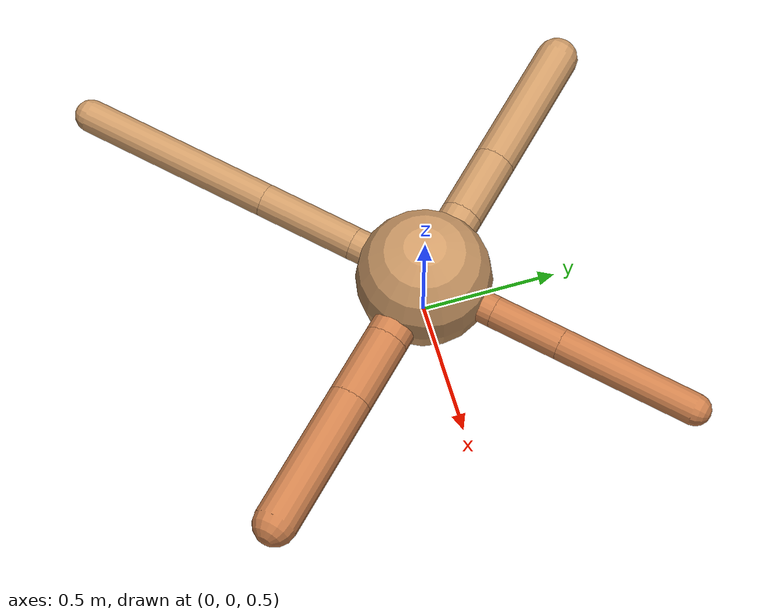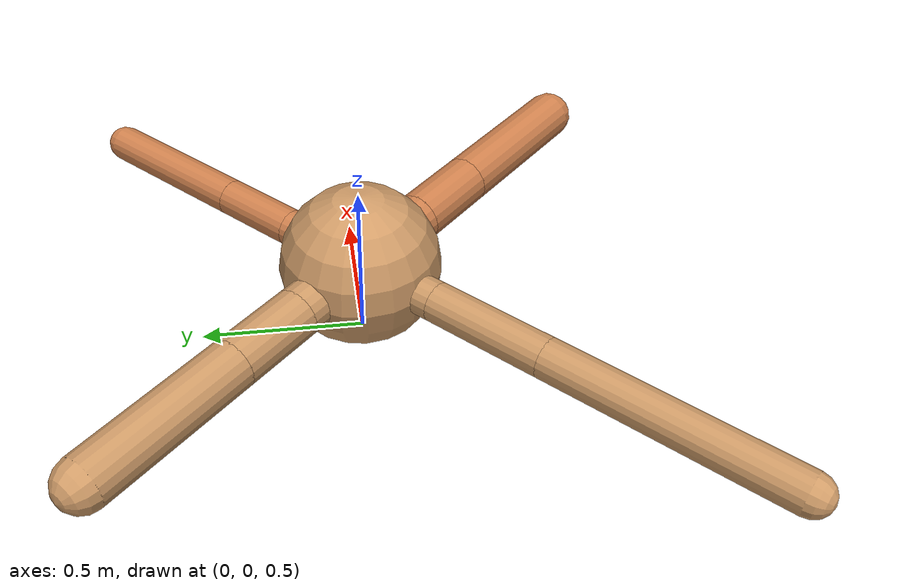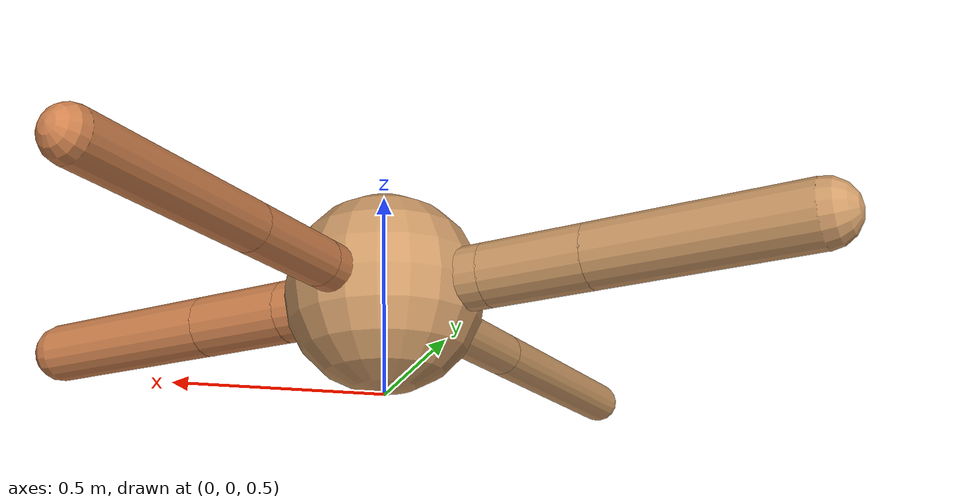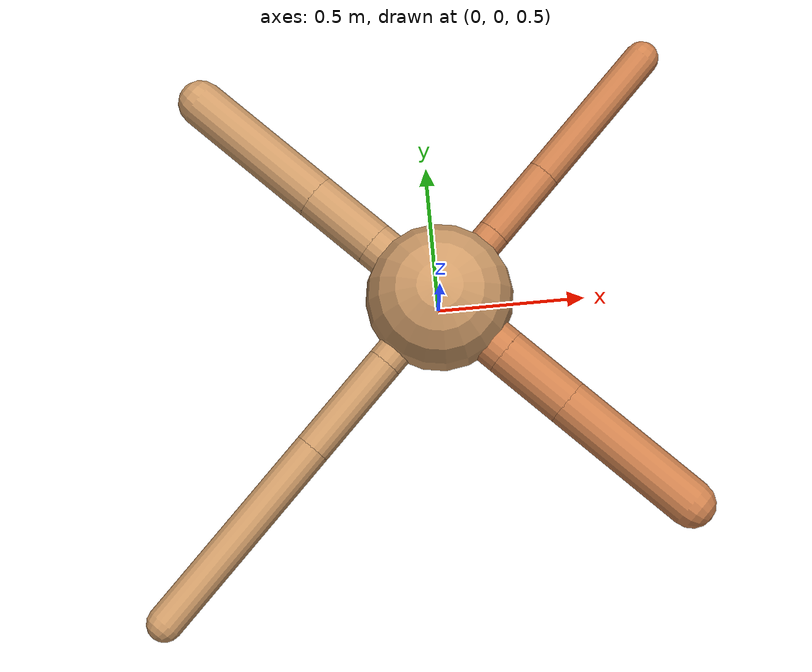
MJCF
<?xml version="1.0" ?>
<mujoco model="ant">

	<compiler angle="degree" coordinate="local" inertiafromgeom="true"/>

	<option integrator="RK4" timestep="0.01"/>

	<custom>

		<numeric data="0.0 0.0 0.55 1.0 0.0 0.0 0.0 0.0 1.0 0.0 -1.0 0.0 -1.0 0.0 1.0" name="init_qpos"/>

	</custom>

	<default>

		<joint armature="1" damping="1" limited="true"/>

		<geom conaffinity="0" condim="3" density="5.0" friction="1.5 0.1 0.1" margin="0.01" rgba="0.8 0.6 0.4 1"/>

	</default>

	<worldbody>

		<body name="torso" pos="0 0 0.75">

			<geom name="torso_geom" pos="0 0 0" size="0.24520596670433678" type="sphere"/>

			<!--joint armature="0" damping="0" limited="false" margin="0.01" name="root" pos="0 0 0" type="free"/-->

			<body name="front_left_leg" pos="0 0 0">

				<geom fromto="0 0 0 0.2 0.2 0" name="aux_1_geom" size="0.057876693634388826" type="capsule" rgba=".8 .5 .3 1"/>

				<body name="aux_1" pos="0.2 0.2 0">

					<joint axis="0 0 1" name="hip_1" pos="0.0 0.0 0.0" range="-40 40" type="hinge"/>

					<geom fromto="0 0 0 0.18449053502280166 0.18449053502280166 0" name="left_leg_geom" size="0.057876693634388826" type="capsule" rgba=".8 .5 .3 1"/>

					<body pos="0.18449053502280166 0.18449053502280166 0" name="front_left_foot">

						<joint axis="-1 1 0" name="ankle_1" pos="0.0 0.0 0.0" range="30 100" type="hinge"/>

						<geom fromto="0 0 0 0.3689810700456033 0.3689810700456033 0" name="left_ankle_geom" size="0.057876693634388826" type="capsule" rgba=".8 .5 .3 1"/>

					</body>

				</body>

			</body>

			<body name="front_right_leg" pos="0 0 0">

				<geom fromto="0 0 0 -0.2 0.2 0" name="aux_2_geom" size="0.0779165233029926" type="capsule"/>

				<body name="aux_2" pos="-0.2 0.2 0">

					<joint axis="0 0 1" name="hip_2" pos="0.0 0.0 0.0" range="-40 40" type="hinge"/>

					<geom fromto="0 0 0 -0.17811394996754365 0.17811394996754365 0" name="right_leg_geom" size="0.0779165233029926" type="capsule"/>

					<body pos="-0.17811394996754365 0.17811394996754365 0" name="front_right_foot">

						<joint axis="1 1 0" name="ankle_2" pos="0.0 0.0 0.0" range="-100 -30" type="hinge"/>

						<geom fromto="0 0 0 -0.3562278999350873 0.3562278999350873 0" name="right_ankle_geom" size="0.0779165233029926" type="capsule"/>

					</body>

				</body>

			</body>

			<body name="left_back_leg" pos="0 0 0">

				<geom fromto="0 0 0 -0.2 -0.2 0" name="aux_3_geom" size="0.060656548297523774" type="capsule"/>

				<body name="aux_3" pos="-0.2 -0.2 0">

					<joint axis="0 0 1" name="hip_3" pos="0.0 0.0 0.0" range="-40 40" type="hinge"/>

					<geom fromto="0 0 0 -0.25973182904524544 -0.25973182904524544 0" name="back_leg_geom" size="0.060656548297523774" type="capsule"/>

					<body pos="-0.25973182904524544 -0.25973182904524544 0" name="left_back_foot">

						<joint axis="-1 1 0" name="ankle_3" pos="0.0 0.0 0.0" range="-100 -30" type="hinge"/>

						<geom fromto="0 0 0 -0.5194636580904909 -0.5194636580904909 0" name="third_ankle_geom" size="0.060656548297523774" type="capsule"/>

					</body>

				</body>

			</body>

			<body name="right_back_leg" pos="0 0 0">

				<geom fromto="0 0 0 0.2 -0.2 0" name="aux_4_geom" size="0.08033777743395223" type="capsule" rgba=".8 .5 .3 1"/>

				<body name="aux_4" pos="0.2 -0.2 0">

					<joint axis="0 0 1" name="hip_4" pos="0.0 0.0 0.0" range="-40 40" type="hinge"/>

					<geom fromto="0 0 0 0.1842093764948776 -0.1842093764948776 0" name="rightback_leg_geom" size="0.08033777743395223" type="capsule" rgba=".8 .5 .3 1"/>

					<body pos="0.1842093764948776 -0.1842093764948776 0" name="right_back_foot">

						<joint axis="1 1 0" name="ankle_4" pos="0.0 0.0 0.0" range="30 100" type="hinge"/>

						<geom fromto="0 0 0 0.3684187529897552 -0.3684187529897552 0" name="fourth_ankle_geom" size="0.08033777743395223" type="capsule" rgba=".8 .5 .3 1"/>

					</body>

				</body>

			</body>

		</body>

	</worldbody>

	<actuator>

		<motor ctrllimited="true" ctrlrange="-1.0 1.0" joint="hip_4" gear="150"/>

		<motor ctrllimited="true" ctrlrange="-1.0 1.0" joint="ankle_4" gear="150"/>

		<motor ctrllimited="true" ctrlrange="-1.0 1.0" joint="hip_1" gear="150"/>

		<motor ctrllimited="true" ctrlrange="-1.0 1.0" joint="ankle_1" gear="150"/>

		<motor ctrllimited="true" ctrlrange="-1.0 1.0" joint="hip_2" gear="150"/>

		<motor ctrllimited="true" ctrlrange="-1.0 1.0" joint="ankle_2" gear="150"/>

		<motor ctrllimited="true" ctrlrange="-1.0 1.0" joint="hip_3" gear="150"/>

		<motor ctrllimited="true" ctrlrange="-1.0 1.0" joint="ankle_3" gear="150"/>

	</actuator>

</mujoco>
